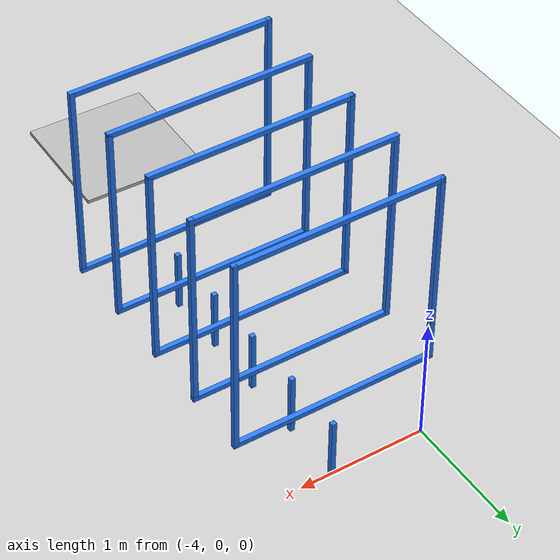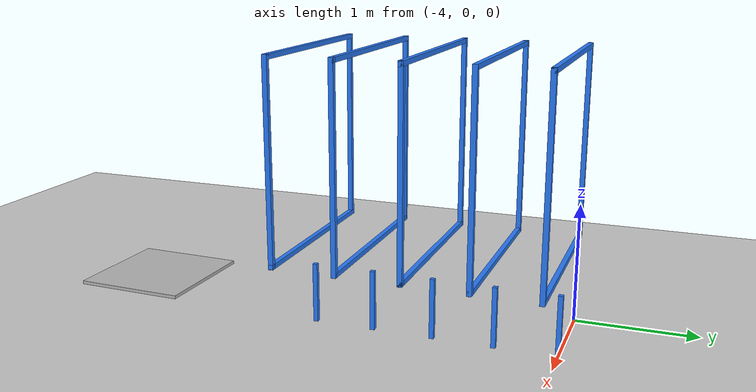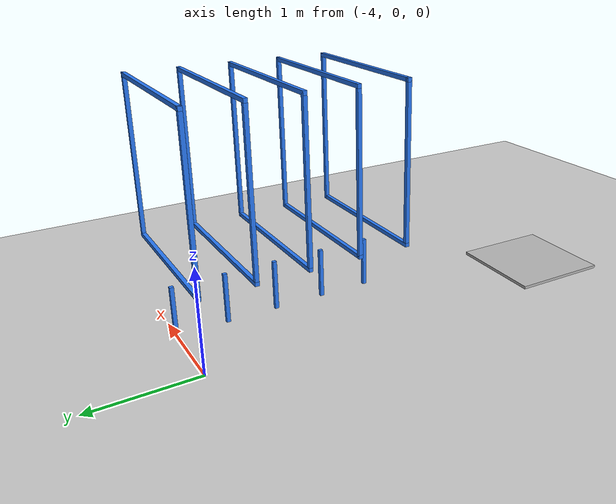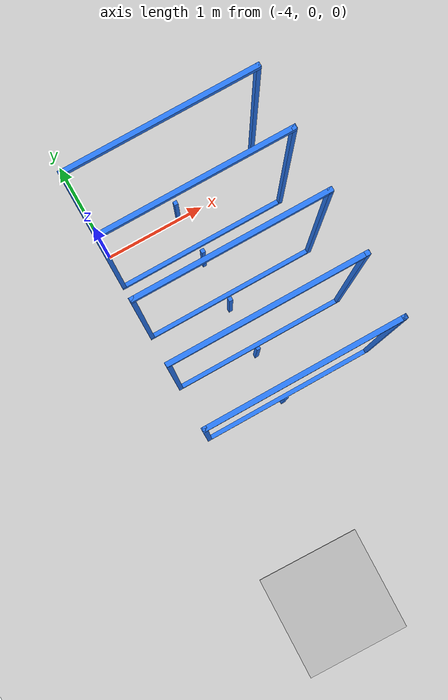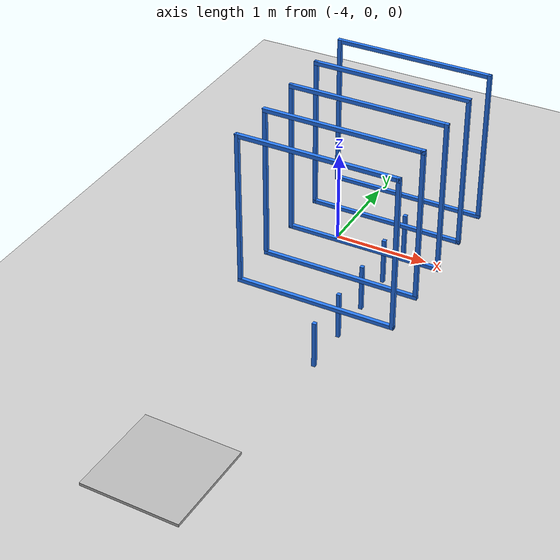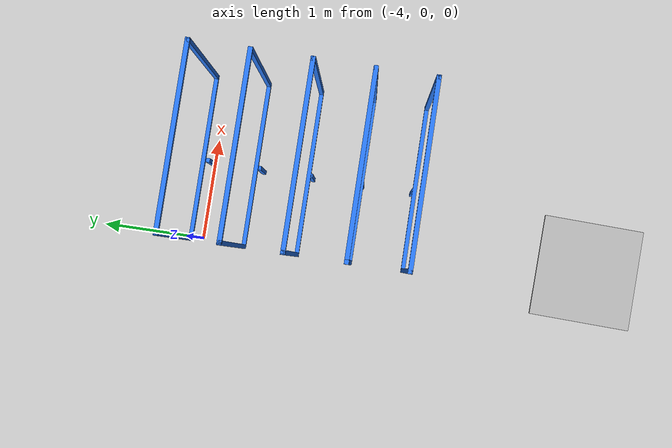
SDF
<sdf version="1.7">
 <world name="default">
  <model name="ground_plane">
   <static>1</static>
   <link name="link">
    <collision name="collision">
     <geometry><plane><normal>0 0 1</normal><size>100 100</size></plane></geometry>
     <surface><friction><ode><mu>100</mu><mu2>50</mu2></ode></friction></surface>
    </collision>
    <visual name="visual">
     <cast_shadows>0</cast_shadows>
     <geometry><plane><normal>0 0 1</normal><size>100 100</size></plane></geometry>
     <material>
      <script><uri>file://media/materials/scripts/gazebo.material</uri><name>Gazebo/Grey</name></script>
     </material>
    </visual>
   </link>
  </model>
  <model name="small_gate">
   <link name="rod">
    <pose>0 0 0.25 0 -0 0</pose>
    <inertial>
     <mass>1</mass>
     <inertia>
      <ixx>0.166667</ixx>
      <ixy>0</ixy>
      <ixz>0</ixz>
      <iyy>0.166667</iyy>
      <iyz>0</iyz>
      <izz>0.166667</izz>
     </inertia>
    </inertial>
    <visual name="visual">
     <geometry><box><size>0.0381 0.0381 0.5</size></box></geometry>
     <material>
      <shader type="vertex"><normal_map>__default__</normal_map></shader>
      <ambient>0.164 0.484 0.978 1</ambient>
      <diffuse>0.164 0.484 0.978 1</diffuse>
      <specular>0.01 0.01 0.01 1</specular>
      <emissive>0 0 0 1</emissive>
     </material>
    </visual>
    <collision name="collision">
     <geometry><box><size>0.0381 0.0381 0.5</size></box></geometry>
     <surface>
      <friction>
       <ode><mu>1</mu><mu2>1</mu2><fdir1>0 0 0</fdir1><slip1>0</slip1><slip2>0</slip2></ode>
       <torsional>
        <coefficient>1</coefficient>
        <patch_radius>0</patch_radius>
        <surface_radius>0</surface_radius>
        <use_patch_radius>1</use_patch_radius>
        <ode><slip>0</slip></ode>
       </torsional>
      </friction>
      <bounce><restitution_coefficient>0</restitution_coefficient><threshold>1e+06</threshold></bounce>
      <contact>
       <collide_without_contact>0</collide_without_contact>
       <collide_without_contact_bitmask>1</collide_without_contact_bitmask>
       <collide_bitmask>1</collide_bitmask>
       <ode>
        <soft_cfm>0</soft_cfm>
        <soft_erp>0.2</soft_erp>
        <kp>1e+13</kp>
        <kd>1</kd>
        <max_vel>0.01</max_vel>
        <min_depth>0</min_depth>
       </ode>
       <bullet>
        <split_impulse>1</split_impulse>
        <split_impulse_penetration_threshold>-0.01</split_impulse_penetration_threshold>
        <soft_cfm>0</soft_cfm>
        <soft_erp>0.2</soft_erp>
        <kp>1e+13</kp>
        <kd>1</kd>
       </bullet>
      </contact>
     </surface>
    </collision>
   </link>
   <link name="top_edge">
    <pose>0 0 2.26905 0 -0 0</pose>
    <inertial>
     <mass>1</mass>
     <inertia>
      <ixx>0.166667</ixx>
      <ixy>0</ixy>
      <ixz>0</ixz>
      <iyy>0.166667</iyy>
      <iyz>0</iyz>
      <izz>0.166667</izz>
     </inertia>
    </inertial>
    <visual name="visual">
     <geometry><box><size>1.5762 0.0381 0.0381</size></box></geometry>
     <material>
      <shader type="vertex"><normal_map>__default__</normal_map></shader>
      <ambient>0.164 0.484 0.978 1</ambient>
      <diffuse>0.164 0.484 0.978 1</diffuse>
      <specular>0.01 0.01 0.01 1</specular>
      <emissive>0 0 0 1</emissive>
     </material>
    </visual>
    <collision name="collision">
     <geometry><box><size>1.5762 0.0381 0.0381</size></box></geometry>
     <surface>
      <friction>
       <ode><mu>1</mu><mu2>1</mu2><fdir1>0 0 0</fdir1><slip1>0</slip1><slip2>0</slip2></ode>
       <torsional>
        <coefficient>1</coefficient>
        <patch_radius>0</patch_radius>
        <surface_radius>0</surface_radius>
        <use_patch_radius>1</use_patch_radius>
        <ode><slip>0</slip></ode>
       </torsional>
      </friction>
      <bounce><restitution_coefficient>0</restitution_coefficient><threshold>1e+06</threshold></bounce>
      <contact>
       <collide_without_contact>0</collide_without_contact>
       <collide_without_contact_bitmask>1</collide_without_contact_bitmask>
       <collide_bitmask>1</collide_bitmask>
       <ode>
        <soft_cfm>0</soft_cfm>
        <soft_erp>0.2</soft_erp>
        <kp>1e+13</kp>
        <kd>1</kd>
        <max_vel>0.01</max_vel>
        <min_depth>0</min_depth>
       </ode>
       <bullet>
        <split_impulse>1</split_impulse>
        <split_impulse_penetration_threshold>-0.01</split_impulse_penetration_threshold>
        <soft_cfm>0</soft_cfm>
        <soft_erp>0.2</soft_erp>
        <kp>1e+13</kp>
        <kd>1</kd>
       </bullet>
      </contact>
     </surface>
    </collision>
   </link>
   <link name="bottom_edge">
    <pose>0 0 0.73095 0 -0 0</pose>
    <inertial>
     <mass>1</mass>
     <inertia>
      <ixx>0.166667</ixx>
      <ixy>0</ixy>
      <ixz>0</ixz>
      <iyy>0.166667</iyy>
      <iyz>0</iyz>
      <izz>0.166667</izz>
     </inertia>
    </inertial>
    <visual name="visual">
     <geometry><box><size>1.5762 0.0381 0.0381</size></box></geometry>
     <material>
      <shader type="vertex"><normal_map>__default__</normal_map></shader>
      <ambient>0.164 0.484 0.978 1</ambient>
      <diffuse>0.164 0.484 0.978 1</diffuse>
      <specular>0.01 0.01 0.01 1</specular>
      <emissive>0 0 0 1</emissive>
     </material>
    </visual>
    <collision name="collision">
     <geometry><box><size>1.5762 0.0381 0.0381</size></box></geometry>
     <surface>
      <friction>
       <ode><mu>1</mu><mu2>1</mu2><fdir1>0 0 0</fdir1><slip1>0</slip1><slip2>0</slip2></ode>
       <torsional>
        <coefficient>1</coefficient>
        <patch_radius>0</patch_radius>
        <surface_radius>0</surface_radius>
        <use_patch_radius>1</use_patch_radius>
        <ode><slip>0</slip></ode>
       </torsional>
      </friction>
      <bounce><restitution_coefficient>0</restitution_coefficient><threshold>1e+06</threshold></bounce>
      <contact>
       <collide_without_contact>0</collide_without_contact>
       <collide_without_contact_bitmask>1</collide_without_contact_bitmask>
       <collide_bitmask>1</collide_bitmask>
       <ode>
        <soft_cfm>0</soft_cfm>
        <soft_erp>0.2</soft_erp>
        <kp>1e+13</kp>
        <kd>1</kd>
        <max_vel>0.01</max_vel>
        <min_depth>0</min_depth>
       </ode>
       <bullet>
        <split_impulse>1</split_impulse>
        <split_impulse_penetration_threshold>-0.01</split_impulse_penetration_threshold>
        <soft_cfm>0</soft_cfm>
        <soft_erp>0.2</soft_erp>
        <kp>1e+13</kp>
        <kd>1</kd>
       </bullet>
      </contact>
     </surface>
    </collision>
   </link>
   <link name="left_edge">
    <pose>-0.76905 0 1.50 0 -0 0</pose>
    <inertial>
     <mass>1</mass>
     <inertia>
      <ixx>0.166667</ixx>
      <ixy>0</ixy>
      <ixz>0</ixz>
      <iyy>0.166667</iyy>
      <iyz>0</iyz>
      <izz>0.166667</izz>
     </inertia>
    </inertial>
    <visual name="visual">
     <geometry><box><size>0.0381 0.0381 1.5762</size></box></geometry>
     <material>
      <shader type="vertex"><normal_map>__default__</normal_map></shader>
      <ambient>0.164 0.484 0.978 1</ambient>
      <diffuse>0.164 0.484 0.978 1</diffuse>
      <specular>0.01 0.01 0.01 1</specular>
      <emissive>0 0 0 1</emissive>
     </material>
    </visual>
    <collision name="collision">
     <geometry><box><size>0.0381 0.0381 1.5762</size></box></geometry>
     <surface>
      <friction>
       <ode><mu>1</mu><mu2>1</mu2><fdir1>0 0 0</fdir1><slip1>0</slip1><slip2>0</slip2></ode>
       <torsional>
        <coefficient>1</coefficient>
        <patch_radius>0</patch_radius>
        <surface_radius>0</surface_radius>
        <use_patch_radius>1</use_patch_radius>
        <ode><slip>0</slip></ode>
       </torsional>
      </friction>
      <bounce><restitution_coefficient>0</restitution_coefficient><threshold>1e+06</threshold></bounce>
      <contact>
       <collide_without_contact>0</collide_without_contact>
       <collide_without_contact_bitmask>1</collide_without_contact_bitmask>
       <collide_bitmask>1</collide_bitmask>
       <ode>
        <soft_cfm>0</soft_cfm>
        <soft_erp>0.2</soft_erp>
        <kp>1e+13</kp>
        <kd>1</kd>
        <max_vel>0.01</max_vel>
        <min_depth>0</min_depth>
       </ode>
       <bullet>
        <split_impulse>1</split_impulse>
        <split_impulse_penetration_threshold>-0.01</split_impulse_penetration_threshold>
        <soft_cfm>0</soft_cfm>
        <soft_erp>0.2</soft_erp>
        <kp>1e+13</kp>
        <kd>1</kd>
       </bullet>
      </contact>
     </surface>
    </collision>
   </link>
   <link name="right_edge">
    <pose>0.76905 0 1.50 0 -0 0</pose>
    <inertial>
     <mass>1</mass>
     <inertia>
      <ixx>0.166667</ixx>
      <ixy>0</ixy>
      <ixz>0</ixz>
      <iyy>0.166667</iyy>
      <iyz>0</iyz>
      <izz>0.166667</izz>
     </inertia>
    </inertial>
    <visual name="visual">
     <geometry><box><size>0.0381 0.0381 1.5762</size></box></geometry>
     <material>
      <shader type="vertex"><normal_map>__default__</normal_map></shader>
      <ambient>0.164 0.484 0.978 1</ambient>
      <diffuse>0.164 0.484 0.978 1</diffuse>
      <specular>0.01 0.01 0.01 1</specular>
      <emissive>0 0 0 1</emissive>
     </material>
    </visual>
    <collision name="collision">
     <geometry><box><size>0.0381 0.0381 1.5762</size></box></geometry>
     <surface>
      <friction>
       <ode><mu>1</mu><mu2>1</mu2><fdir1>0 0 0</fdir1><slip1>0</slip1><slip2>0</slip2></ode>
       <torsional>
        <coefficient>1</coefficient>
        <patch_radius>0</patch_radius>
        <surface_radius>0</surface_radius>
        <use_patch_radius>1</use_patch_radius>
        <ode><slip>0</slip></ode>
       </torsional>
      </friction>
      <bounce><restitution_coefficient>0</restitution_coefficient><threshold>1e+06</threshold></bounce>
      <contact>
       <collide_without_contact>0</collide_without_contact>
       <collide_without_contact_bitmask>1</collide_without_contact_bitmask>
       <collide_bitmask>1</collide_bitmask>
       <ode>
        <soft_cfm>0</soft_cfm>
        <soft_erp>0.2</soft_erp>
        <kp>1e+13</kp>
        <kd>1</kd>
        <max_vel>0.01</max_vel>
        <min_depth>0</min_depth>
       </ode>
       <bullet>
        <split_impulse>1</split_impulse>
        <split_impulse_penetration_threshold>-0.01</split_impulse_penetration_threshold>
        <soft_cfm>0</soft_cfm>
        <soft_erp>0.2</soft_erp>
        <kp>1e+13</kp>
        <kd>1</kd>
       </bullet>
      </contact>
     </surface>
    </collision>
   </link>
   <static>1</static>
   <pose>-3.25 -2 0 0 -0 0</pose>
  </model>
  <model name="small_gate_0">
   <link name="rod">
    <pose>0 0 0.25 0 -0 0</pose>
    <inertial>
     <mass>1</mass>
     <inertia>
      <ixx>0.166667</ixx>
      <ixy>0</ixy>
      <ixz>0</ixz>
      <iyy>0.166667</iyy>
      <iyz>0</iyz>
      <izz>0.166667</izz>
     </inertia>
    </inertial>
    <visual name="visual">
     <geometry><box><size>0.0381 0.0381 0.5</size></box></geometry>
     <material>
      <shader type="vertex"><normal_map>__default__</normal_map></shader>
      <ambient>0.164 0.484 0.978 1</ambient>
      <diffuse>0.164 0.484 0.978 1</diffuse>
      <specular>0.01 0.01 0.01 1</specular>
      <emissive>0 0 0 1</emissive>
     </material>
    </visual>
    <collision name="collision">
     <geometry><box><size>0.0381 0.0381 0.5</size></box></geometry>
     <surface>
      <friction>
       <ode><mu>1</mu><mu2>1</mu2><fdir1>0 0 0</fdir1><slip1>0</slip1><slip2>0</slip2></ode>
       <torsional>
        <coefficient>1</coefficient>
        <patch_radius>0</patch_radius>
        <surface_radius>0</surface_radius>
        <use_patch_radius>1</use_patch_radius>
        <ode><slip>0</slip></ode>
       </torsional>
      </friction>
      <bounce><restitution_coefficient>0</restitution_coefficient><threshold>1e+06</threshold></bounce>
      <contact>
       <collide_without_contact>0</collide_without_contact>
       <collide_without_contact_bitmask>1</collide_without_contact_bitmask>
       <collide_bitmask>1</collide_bitmask>
       <ode>
        <soft_cfm>0</soft_cfm>
        <soft_erp>0.2</soft_erp>
        <kp>1e+13</kp>
        <kd>1</kd>
        <max_vel>0.01</max_vel>
        <min_depth>0</min_depth>
       </ode>
       <bullet>
        <split_impulse>1</split_impulse>
        <split_impulse_penetration_threshold>-0.01</split_impulse_penetration_threshold>
        <soft_cfm>0</soft_cfm>
        <soft_erp>0.2</soft_erp>
        <kp>1e+13</kp>
        <kd>1</kd>
       </bullet>
      </contact>
     </surface>
    </collision>
   </link>
   <link name="top_edge">
    <pose>0 0 2.26905 0 -0 0</pose>
    <inertial>
     <mass>1</mass>
     <inertia>
      <ixx>0.166667</ixx>
      <ixy>0</ixy>
      <ixz>0</ixz>
      <iyy>0.166667</iyy>
      <iyz>0</iyz>
      <izz>0.166667</izz>
     </inertia>
    </inertial>
    <visual name="visual">
     <geometry><box><size>1.5762 0.0381 0.0381</size></box></geometry>
     <material>
      <shader type="vertex"><normal_map>__default__</normal_map></shader>
      <ambient>0.164 0.484 0.978 1</ambient>
      <diffuse>0.164 0.484 0.978 1</diffuse>
      <specular>0.01 0.01 0.01 1</specular>
      <emissive>0 0 0 1</emissive>
     </material>
    </visual>
    <collision name="collision">
     <geometry><box><size>1.5762 0.0381 0.0381</size></box></geometry>
     <surface>
      <friction>
       <ode><mu>1</mu><mu2>1</mu2><fdir1>0 0 0</fdir1><slip1>0</slip1><slip2>0</slip2></ode>
       <torsional>
        <coefficient>1</coefficient>
        <patch_radius>0</patch_radius>
        <surface_radius>0</surface_radius>
        <use_patch_radius>1</use_patch_radius>
        <ode><slip>0</slip></ode>
       </torsional>
      </friction>
      <bounce><restitution_coefficient>0</restitution_coefficient><threshold>1e+06</threshold></bounce>
      <contact>
       <collide_without_contact>0</collide_without_contact>
       <collide_without_contact_bitmask>1</collide_without_contact_bitmask>
       <collide_bitmask>1</collide_bitmask>
       <ode>
        <soft_cfm>0</soft_cfm>
        <soft_erp>0.2</soft_erp>
        <kp>1e+13</kp>
        <kd>1</kd>
        <max_vel>0.01</max_vel>
        <min_depth>0</min_depth>
       </ode>
       <bullet>
        <split_impulse>1</split_impulse>
        <split_impulse_penetration_threshold>-0.01</split_impulse_penetration_threshold>
        <soft_cfm>0</soft_cfm>
        <soft_erp>0.2</soft_erp>
        <kp>1e+13</kp>
        <kd>1</kd>
       </bullet>
      </contact>
     </surface>
    </collision>
   </link>
   <link name="bottom_edge">
    <pose>0 0 0.73095 0 -0 0</pose>
    <inertial>
     <mass>1</mass>
     <inertia>
      <ixx>0.166667</ixx>
      <ixy>0</ixy>
      <ixz>0</ixz>
      <iyy>0.166667</iyy>
      <iyz>0</iyz>
      <izz>0.166667</izz>
     </inertia>
    </inertial>
    <visual name="visual">
     <geometry><box><size>1.5762 0.0381 0.0381</size></box></geometry>
     <material>
      <shader type="vertex"><normal_map>__default__</normal_map></shader>
      <ambient>0.164 0.484 0.978 1</ambient>
      <diffuse>0.164 0.484 0.978 1</diffuse>
      <specular>0.01 0.01 0.01 1</specular>
      <emissive>0 0 0 1</emissive>
     </material>
    </visual>
    <collision name="collision">
     <geometry><box><size>1.5762 0.0381 0.0381</size></box></geometry>
     <surface>
      <friction>
       <ode><mu>1</mu><mu2>1</mu2><fdir1>0 0 0</fdir1><slip1>0</slip1><slip2>0</slip2></ode>
       <torsional>
        <coefficient>1</coefficient>
        <patch_radius>0</patch_radius>
        <surface_radius>0</surface_radius>
        <use_patch_radius>1</use_patch_radius>
        <ode><slip>0</slip></ode>
       </torsional>
      </friction>
      <bounce><restitution_coefficient>0</restitution_coefficient><threshold>1e+06</threshold></bounce>
      <contact>
       <collide_without_contact>0</collide_without_contact>
       <collide_without_contact_bitmask>1</collide_without_contact_bitmask>
       <collide_bitmask>1</collide_bitmask>
       <ode>
        <soft_cfm>0</soft_cfm>
        <soft_erp>0.2</soft_erp>
        <kp>1e+13</kp>
        <kd>1</kd>
        <max_vel>0.01</max_vel>
        <min_depth>0</min_depth>
       </ode>
       <bullet>
        <split_impulse>1</split_impulse>
        <split_impulse_penetration_threshold>-0.01</split_impulse_penetration_threshold>
        <soft_cfm>0</soft_cfm>
        <soft_erp>0.2</soft_erp>
        <kp>1e+13</kp>
        <kd>1</kd>
       </bullet>
      </contact>
     </surface>
    </collision>
   </link>
   <link name="left_edge">
    <pose>-0.76905 0 1.50 0 -0 0</pose>
    <inertial>
     <mass>1</mass>
     <inertia>
      <ixx>0.166667</ixx>
      <ixy>0</ixy>
      <ixz>0</ixz>
      <iyy>0.166667</iyy>
      <iyz>0</iyz>
      <izz>0.166667</izz>
     </inertia>
    </inertial>
    <visual name="visual">
     <geometry><box><size>0.0381 0.0381 1.5762</size></box></geometry>
     <material>
      <shader type="vertex"><normal_map>__default__</normal_map></shader>
      <ambient>0.164 0.484 0.978 1</ambient>
      <diffuse>0.164 0.484 0.978 1</diffuse>
      <specular>0.01 0.01 0.01 1</specular>
      <emissive>0 0 0 1</emissive>
     </material>
    </visual>
    <collision name="collision">
     <geometry><box><size>0.0381 0.0381 1.5762</size></box></geometry>
     <surface>
      <friction>
       <ode><mu>1</mu><mu2>1</mu2><fdir1>0 0 0</fdir1><slip1>0</slip1><slip2>0</slip2></ode>
       <torsional>
        <coefficient>1</coefficient>
        <patch_radius>0</patch_radius>
        <surface_radius>0</surface_radius>
        <use_patch_radius>1</use_patch_radius>
        <ode><slip>0</slip></ode>
       </torsional>
      </friction>
      <bounce><restitution_coefficient>0</restitution_coefficient><threshold>1e+06</threshold></bounce>
      <contact>
       <collide_without_contact>0</collide_without_contact>
       <collide_without_contact_bitmask>1</collide_without_contact_bitmask>
       <collide_bitmask>1</collide_bitmask>
       <ode>
        <soft_cfm>0</soft_cfm>
        <soft_erp>0.2</soft_erp>
        <kp>1e+13</kp>
        <kd>1</kd>
        <max_vel>0.01</max_vel>
        <min_depth>0</min_depth>
       </ode>
       <bullet>
        <split_impulse>1</split_impulse>
        <split_impulse_penetration_threshold>-0.01</split_impulse_penetration_threshold>
        <soft_cfm>0</soft_cfm>
        <soft_erp>0.2</soft_erp>
        <kp>1e+13</kp>
        <kd>1</kd>
       </bullet>
      </contact>
     </surface>
    </collision>
   </link>
   <link name="right_edge">
    <pose>0.76905 0 1.50 0 -0 0</pose>
    <inertial>
     <mass>1</mass>
     <inertia>
      <ixx>0.166667</ixx>
      <ixy>0</ixy>
      <ixz>0</ixz>
      <iyy>0.166667</iyy>
      <iyz>0</iyz>
      <izz>0.166667</izz>
     </inertia>
    </inertial>
    <visual name="visual">
     <geometry><box><size>0.0381 0.0381 1.5762</size></box></geometry>
     <material>
      <shader type="vertex"><normal_map>__default__</normal_map></shader>
      <ambient>0.164 0.484 0.978 1</ambient>
      <diffuse>0.164 0.484 0.978 1</diffuse>
      <specular>0.01 0.01 0.01 1</specular>
      <emissive>0 0 0 1</emissive>
     </material>
    </visual>
    <collision name="collision">
     <geometry><box><size>0.0381 0.0381 1.5762</size></box></geometry>
     <surface>
      <friction>
       <ode><mu>1</mu><mu2>1</mu2><fdir1>0 0 0</fdir1><slip1>0</slip1><slip2>0</slip2></ode>
       <torsional>
        <coefficient>1</coefficient>
        <patch_radius>0</patch_radius>
        <surface_radius>0</surface_radius>
        <use_patch_radius>1</use_patch_radius>
        <ode><slip>0</slip></ode>
       </torsional>
      </friction>
      <bounce><restitution_coefficient>0</restitution_coefficient><threshold>1e+06</threshold></bounce>
      <contact>
       <collide_without_contact>0</collide_without_contact>
       <collide_without_contact_bitmask>1</collide_without_contact_bitmask>
       <collide_bitmask>1</collide_bitmask>
       <ode>
        <soft_cfm>0</soft_cfm>
        <soft_erp>0.2</soft_erp>
        <kp>1e+13</kp>
        <kd>1</kd>
        <max_vel>0.01</max_vel>
        <min_depth>0</min_depth>
       </ode>
       <bullet>
        <split_impulse>1</split_impulse>
        <split_impulse_penetration_threshold>-0.01</split_impulse_penetration_threshold>
        <soft_cfm>0</soft_cfm>
        <soft_erp>0.2</soft_erp>
        <kp>1e+13</kp>
        <kd>1</kd>
       </bullet>
      </contact>
     </surface>
    </collision>
   </link>
   <static>1</static>
   <pose>-3.25 -1.5 0 0 -0 0</pose>
  </model>
  <model name="small_gate_1">
   <link name="rod">
    <pose>0 0 0.25 0 -0 0</pose>
    <inertial>
     <mass>1</mass>
     <inertia>
      <ixx>0.166667</ixx>
      <ixy>0</ixy>
      <ixz>0</ixz>
      <iyy>0.166667</iyy>
      <iyz>0</iyz>
      <izz>0.166667</izz>
     </inertia>
    </inertial>
    <visual name="visual">
     <geometry><box><size>0.0381 0.0381 0.5</size></box></geometry>
     <material>
      <shader type="vertex"><normal_map>__default__</normal_map></shader>
      <ambient>0.164 0.484 0.978 1</ambient>
      <diffuse>0.164 0.484 0.978 1</diffuse>
      <specular>0.01 0.01 0.01 1</specular>
      <emissive>0 0 0 1</emissive>
     </material>
    </visual>
    <collision name="collision">
     <geometry><box><size>0.0381 0.0381 0.5</size></box></geometry>
     <surface>
      <friction>
       <ode><mu>1</mu><mu2>1</mu2><fdir1>0 0 0</fdir1><slip1>0</slip1><slip2>0</slip2></ode>
       <torsional>
        <coefficient>1</coefficient>
        <patch_radius>0</patch_radius>
        <surface_radius>0</surface_radius>
        <use_patch_radius>1</use_patch_radius>
        <ode><slip>0</slip></ode>
       </torsional>
      </friction>
      <bounce><restitution_coefficient>0</restitution_coefficient><threshold>1e+06</threshold></bounce>
      <contact>
       <collide_without_contact>0</collide_without_contact>
       <collide_without_contact_bitmask>1</collide_without_contact_bitmask>
       <collide_bitmask>1</collide_bitmask>
       <ode>
        <soft_cfm>0</soft_cfm>
        <soft_erp>0.2</soft_erp>
        <kp>1e+13</kp>
        <kd>1</kd>
        <max_vel>0.01</max_vel>
        <min_depth>0</min_depth>
       </ode>
       <bullet>
        <split_impulse>1</split_impulse>
        <split_impulse_penetration_threshold>-0.01</split_impulse_penetration_threshold>
        <soft_cfm>0</soft_cfm>
        <soft_erp>0.2</soft_erp>
        <kp>1e+13</kp>
        <kd>1</kd>
       </bullet>
      </contact>
     </surface>
    </collision>
   </link>
   <link name="top_edge">
    <pose>0 0 2.26905 0 -0 0</pose>
    <inertial>
     <mass>1</mass>
     <inertia>
      <ixx>0.166667</ixx>
      <ixy>0</ixy>
      <ixz>0</ixz>
      <iyy>0.166667</iyy>
      <iyz>0</iyz>
      <izz>0.166667</izz>
     </inertia>
    </inertial>
    <visual name="visual">
     <geometry><box><size>1.5762 0.0381 0.0381</size></box></geometry>
     <material>
      <shader type="vertex"><normal_map>__default__</normal_map></shader>
      <ambient>0.164 0.484 0.978 1</ambient>
      <diffuse>0.164 0.484 0.978 1</diffuse>
      <specular>0.01 0.01 0.01 1</specular>
      <emissive>0 0 0 1</emissive>
     </material>
    </visual>
    <collision name="collision">
     <geometry><box><size>1.5762 0.0381 0.0381</size></box></geometry>
     <surface>
      <friction>
       <ode><mu>1</mu><mu2>1</mu2><fdir1>0 0 0</fdir1><slip1>0</slip1><slip2>0</slip2></ode>
       <torsional>
        <coefficient>1</coefficient>
        <patch_radius>0</patch_radius>
        <surface_radius>0</surface_radius>
        <use_patch_radius>1</use_patch_radius>
        <ode><slip>0</slip></ode>
       </torsional>
      </friction>
      <bounce><restitution_coefficient>0</restitution_coefficient><threshold>1e+06</threshold></bounce>
      <contact>
       <collide_without_contact>0</collide_without_contact>
       <collide_without_contact_bitmask>1</collide_without_contact_bitmask>
       <collide_bitmask>1</collide_bitmask>
       <ode>
        <soft_cfm>0</soft_cfm>
        <soft_erp>0.2</soft_erp>
        <kp>1e+13</kp>
        <kd>1</kd>
        <max_vel>0.01</max_vel>
        <min_depth>0</min_depth>
       </ode>
       <bullet>
        <split_impulse>1</split_impulse>
        <split_impulse_penetration_threshold>-0.01</split_impulse_penetration_threshold>
        <soft_cfm>0</soft_cfm>
        <soft_erp>0.2</soft_erp>
        <kp>1e+13</kp>
        <kd>1</kd>
       </bullet>
      </contact>
     </surface>
    </collision>
   </link>
   <link name="bottom_edge">
    <pose>0 0 0.73095 0 -0 0</pose>
    <inertial>
     <mass>1</mass>
     <inertia>
      <ixx>0.166667</ixx>
      <ixy>0</ixy>
      <ixz>0</ixz>
      <iyy>0.166667</iyy>
      <iyz>0</iyz>
      <izz>0.166667</izz>
     </inertia>
    </inertial>
    <visual name="visual">
     <geometry><box><size>1.5762 0.0381 0.0381</size></box></geometry>
     <material>
      <shader type="vertex"><normal_map>__default__</normal_map></shader>
      <ambient>0.164 0.484 0.978 1</ambient>
      <diffuse>0.164 0.484 0.978 1</diffuse>
      <specular>0.01 0.01 0.01 1</specular>
      <emissive>0 0 0 1</emissive>
     </material>
    </visual>
    <collision name="collision">
     <geometry><box><size>1.5762 0.0381 0.0381</size></box></geometry>
     <surface>
      <friction>
       <ode><mu>1</mu><mu2>1</mu2><fdir1>0 0 0</fdir1><slip1>0</slip1><slip2>0</slip2></ode>
       <torsional>
        <coefficient>1</coefficient>
        <patch_radius>0</patch_radius>
        <surface_radius>0</surface_radius>
        <use_patch_radius>1</use_patch_radius>
        <ode><slip>0</slip></ode>
       </torsional>
      </friction>
      <bounce><restitution_coefficient>0</restitution_coefficient><threshold>1e+06</threshold></bounce>
      <contact>
       <collide_without_contact>0</collide_without_contact>
       <collide_without_contact_bitmask>1</collide_without_contact_bitmask>
       <collide_bitmask>1</collide_bitmask>
       <ode>
        <soft_cfm>0</soft_cfm>
        <soft_erp>0.2</soft_erp>
        <kp>1e+13</kp>
        <kd>1</kd>
        <max_vel>0.01</max_vel>
        <min_depth>0</min_depth>
       </ode>
       <bullet>
        <split_impulse>1</split_impulse>
        <split_impulse_penetration_threshold>-0.01</split_impulse_penetration_threshold>
        <soft_cfm>0</soft_cfm>
        <soft_erp>0.2</soft_erp>
        <kp>1e+13</kp>
        <kd>1</kd>
       </bullet>
      </contact>
     </surface>
    </collision>
   </link>
   <link name="left_edge">
    <pose>-0.76905 0 1.50 0 -0 0</pose>
    <inertial>
     <mass>1</mass>
     <inertia>
      <ixx>0.166667</ixx>
      <ixy>0</ixy>
      <ixz>0</ixz>
      <iyy>0.166667</iyy>
      <iyz>0</iyz>
      <izz>0.166667</izz>
     </inertia>
    </inertial>
    <visual name="visual">
     <geometry><box><size>0.0381 0.0381 1.5762</size></box></geometry>
     <material>
      <shader type="vertex"><normal_map>__default__</normal_map></shader>
      <ambient>0.164 0.484 0.978 1</ambient>
      <diffuse>0.164 0.484 0.978 1</diffuse>
      <specular>0.01 0.01 0.01 1</specular>
      <emissive>0 0 0 1</emissive>
     </material>
    </visual>
    <collision name="collision">
     <geometry><box><size>0.0381 0.0381 1.5762</size></box></geometry>
     <surface>
      <friction>
       <ode><mu>1</mu><mu2>1</mu2><fdir1>0 0 0</fdir1><slip1>0</slip1><slip2>0</slip2></ode>
       <torsional>
        <coefficient>1</coefficient>
        <patch_radius>0</patch_radius>
        <surface_radius>0</surface_radius>
        <use_patch_radius>1</use_patch_radius>
        <ode><slip>0</slip></ode>
       </torsional>
      </friction>
      <bounce><restitution_coefficient>0</restitution_coefficient><threshold>1e+06</threshold></bounce>
      <contact>
       <collide_without_contact>0</collide_without_contact>
       <collide_without_contact_bitmask>1</collide_without_contact_bitmask>
       <collide_bitmask>1</collide_bitmask>
       <ode>
        <soft_cfm>0</soft_cfm>
        <soft_erp>0.2</soft_erp>
        <kp>1e+13</kp>
        <kd>1</kd>
        <max_vel>0.01</max_vel>
        <min_depth>0</min_depth>
       </ode>
       <bullet>
        <split_impulse>1</split_impulse>
        <split_impulse_penetration_threshold>-0.01</split_impulse_penetration_threshold>
        <soft_cfm>0</soft_cfm>
        <soft_erp>0.2</soft_erp>
        <kp>1e+13</kp>
        <kd>1</kd>
       </bullet>
      </contact>
     </surface>
    </collision>
   </link>
   <link name="right_edge">
    <pose>0.76905 0 1.50 0 -0 0</pose>
    <inertial>
     <mass>1</mass>
     <inertia>
      <ixx>0.166667</ixx>
      <ixy>0</ixy>
      <ixz>0</ixz>
      <iyy>0.166667</iyy>
      <iyz>0</iyz>
      <izz>0.166667</izz>
     </inertia>
    </inertial>
    <visual name="visual">
     <geometry><box><size>0.0381 0.0381 1.5762</size></box></geometry>
     <material>
      <shader type="vertex"><normal_map>__default__</normal_map></shader>
      <ambient>0.164 0.484 0.978 1</ambient>
      <diffuse>0.164 0.484 0.978 1</diffuse>
      <specular>0.01 0.01 0.01 1</specular>
      <emissive>0 0 0 1</emissive>
     </material>
    </visual>
    <collision name="collision">
     <geometry><box><size>0.0381 0.0381 1.5762</size></box></geometry>
     <surface>
      <friction>
       <ode><mu>1</mu><mu2>1</mu2><fdir1>0 0 0</fdir1><slip1>0</slip1><slip2>0</slip2></ode>
       <torsional>
        <coefficient>1</coefficient>
        <patch_radius>0</patch_radius>
        <surface_radius>0</surface_radius>
        <use_patch_radius>1</use_patch_radius>
        <ode><slip>0</slip></ode>
       </torsional>
      </friction>
      <bounce><restitution_coefficient>0</restitution_coefficient><threshold>1e+06</threshold></bounce>
      <contact>
       <collide_without_contact>0</collide_without_contact>
       <collide_without_contact_bitmask>1</collide_without_contact_bitmask>
       <collide_bitmask>1</collide_bitmask>
       <ode>
        <soft_cfm>0</soft_cfm>
        <soft_erp>0.2</soft_erp>
        <kp>1e+13</kp>
        <kd>1</kd>
        <max_vel>0.01</max_vel>
        <min_depth>0</min_depth>
       </ode>
       <bullet>
        <split_impulse>1</split_impulse>
        <split_impulse_penetration_threshold>-0.01</split_impulse_penetration_threshold>
        <soft_cfm>0</soft_cfm>
        <soft_erp>0.2</soft_erp>
        <kp>1e+13</kp>
        <kd>1</kd>
       </bullet>
      </contact>
     </surface>
    </collision>
   </link>
   <static>1</static>
   <pose>-3.25 -1 0 0 -0 0</pose>
  </model>
  <model name="small_gate_2">
   <link name="rod">
    <pose>0 0 0.25 0 -0 0</pose>
    <inertial>
     <mass>1</mass>
     <inertia>
      <ixx>0.166667</ixx>
      <ixy>0</ixy>
      <ixz>0</ixz>
      <iyy>0.166667</iyy>
      <iyz>0</iyz>
      <izz>0.166667</izz>
     </inertia>
    </inertial>
    <visual name="visual">
     <geometry><box><size>0.0381 0.0381 0.5</size></box></geometry>
     <material>
      <shader type="vertex"><normal_map>__default__</normal_map></shader>
      <ambient>0.164 0.484 0.978 1</ambient>
      <diffuse>0.164 0.484 0.978 1</diffuse>
      <specular>0.01 0.01 0.01 1</specular>
      <emissive>0 0 0 1</emissive>
     </material>
    </visual>
    <collision name="collision">
     <geometry><box><size>0.0381 0.0381 0.5</size></box></geometry>
     <surface>
      <friction>
       <ode><mu>1</mu><mu2>1</mu2><fdir1>0 0 0</fdir1><slip1>0</slip1><slip2>0</slip2></ode>
       <torsional>
        <coefficient>1</coefficient>
        <patch_radius>0</patch_radius>
        <surface_radius>0</surface_radius>
        <use_patch_radius>1</use_patch_radius>
        <ode><slip>0</slip></ode>
       </torsional>
      </friction>
      <bounce><restitution_coefficient>0</restitution_coefficient><threshold>1e+06</threshold></bounce>
      <contact>
       <collide_without_contact>0</collide_without_contact>
       <collide_without_contact_bitmask>1</collide_without_contact_bitmask>
       <collide_bitmask>1</collide_bitmask>
       <ode>
        <soft_cfm>0</soft_cfm>
        <soft_erp>0.2</soft_erp>
        <kp>1e+13</kp>
        <kd>1</kd>
        <max_vel>0.01</max_vel>
        <min_depth>0</min_depth>
       </ode>
       <bullet>
        <split_impulse>1</split_impulse>
        <split_impulse_penetration_threshold>-0.01</split_impulse_penetration_threshold>
        <soft_cfm>0</soft_cfm>
        <soft_erp>0.2</soft_erp>
        <kp>1e+13</kp>
        <kd>1</kd>
       </bullet>
      </contact>
     </surface>
    </collision>
   </link>
   <link name="top_edge">
    <pose>0 0 2.26905 0 -0 0</pose>
    <inertial>
     <mass>1</mass>
     <inertia>
      <ixx>0.166667</ixx>
      <ixy>0</ixy>
      <ixz>0</ixz>
      <iyy>0.166667</iyy>
      <iyz>0</iyz>
      <izz>0.166667</izz>
     </inertia>
    </inertial>
    <visual name="visual">
     <geometry><box><size>1.5762 0.0381 0.0381</size></box></geometry>
     <material>
      <shader type="vertex"><normal_map>__default__</normal_map></shader>
      <ambient>0.164 0.484 0.978 1</ambient>
      <diffuse>0.164 0.484 0.978 1</diffuse>
      <specular>0.01 0.01 0.01 1</specular>
      <emissive>0 0 0 1</emissive>
     </material>
    </visual>
    <collision name="collision">
     <geometry><box><size>1.5762 0.0381 0.0381</size></box></geometry>
     <surface>
      <friction>
       <ode><mu>1</mu><mu2>1</mu2><fdir1>0 0 0</fdir1><slip1>0</slip1><slip2>0</slip2></ode>
       <torsional>
        <coefficient>1</coefficient>
        <patch_radius>0</patch_radius>
        <surface_radius>0</surface_radius>
        <use_patch_radius>1</use_patch_radius>
        <ode><slip>0</slip></ode>
       </torsional>
      </friction>
      <bounce><restitution_coefficient>0</restitution_coefficient><threshold>1e+06</threshold></bounce>
      <contact>
       <collide_without_contact>0</collide_without_contact>
       <collide_without_contact_bitmask>1</collide_without_contact_bitmask>
       <collide_bitmask>1</collide_bitmask>
       <ode>
        <soft_cfm>0</soft_cfm>
        <soft_erp>0.2</soft_erp>
        <kp>1e+13</kp>
        <kd>1</kd>
        <max_vel>0.01</max_vel>
        <min_depth>0</min_depth>
       </ode>
       <bullet>
        <split_impulse>1</split_impulse>
        <split_impulse_penetration_threshold>-0.01</split_impulse_penetration_threshold>
        <soft_cfm>0</soft_cfm>
        <soft_erp>0.2</soft_erp>
        <kp>1e+13</kp>
        <kd>1</kd>
       </bullet>
      </contact>
     </surface>
    </collision>
   </link>
   <link name="bottom_edge">
    <pose>0 0 0.73095 0 -0 0</pose>
    <inertial>
     <mass>1</mass>
     <inertia>
      <ixx>0.166667</ixx>
      <ixy>0</ixy>
      <ixz>0</ixz>
      <iyy>0.166667</iyy>
      <iyz>0</iyz>
      <izz>0.166667</izz>
     </inertia>
    </inertial>
    <visual name="visual">
     <geometry><box><size>1.5762 0.0381 0.0381</size></box></geometry>
     <material>
      <shader type="vertex"><normal_map>__default__</normal_map></shader>
      <ambient>0.164 0.484 0.978 1</ambient>
      <diffuse>0.164 0.484 0.978 1</diffuse>
      <specular>0.01 0.01 0.01 1</specular>
      <emissive>0 0 0 1</emissive>
     </material>
    </visual>
    <collision name="collision">
     <geometry><box><size>1.5762 0.0381 0.0381</size></box></geometry>
     <surface>
      <friction>
       <ode><mu>1</mu><mu2>1</mu2><fdir1>0 0 0</fdir1><slip1>0</slip1><slip2>0</slip2></ode>
       <torsional>
        <coefficient>1</coefficient>
        <patch_radius>0</patch_radius>
        <surface_radius>0</surface_radius>
        <use_patch_radius>1</use_patch_radius>
        <ode><slip>0</slip></ode>
       </torsional>
      </friction>
      <bounce><restitution_coefficient>0</restitution_coefficient><threshold>1e+06</threshold></bounce>
      <contact>
       <collide_without_contact>0</collide_without_contact>
       <collide_without_contact_bitmask>1</collide_without_contact_bitmask>
       <collide_bitmask>1</collide_bitmask>
       <ode>
        <soft_cfm>0</soft_cfm>
        <soft_erp>0.2</soft_erp>
        <kp>1e+13</kp>
        <kd>1</kd>
        <max_vel>0.01</max_vel>
        <min_depth>0</min_depth>
       </ode>
       <bullet>
        <split_impulse>1</split_impulse>
        <split_impulse_penetration_threshold>-0.01</split_impulse_penetration_threshold>
        <soft_cfm>0</soft_cfm>
        <soft_erp>0.2</soft_erp>
        <kp>1e+13</kp>
        <kd>1</kd>
       </bullet>
      </contact>
     </surface>
    </collision>
   </link>
   <link name="left_edge">
    <pose>-0.76905 0 1.50 0 -0 0</pose>
    <inertial>
     <mass>1</mass>
     <inertia>
      <ixx>0.166667</ixx>
      <ixy>0</ixy>
      <ixz>0</ixz>
      <iyy>0.166667</iyy>
      <iyz>0</iyz>
      <izz>0.166667</izz>
     </inertia>
    </inertial>
    <visual name="visual">
     <geometry><box><size>0.0381 0.0381 1.5762</size></box></geometry>
     <material>
      <shader type="vertex"><normal_map>__default__</normal_map></shader>
      <ambient>0.164 0.484 0.978 1</ambient>
      <diffuse>0.164 0.484 0.978 1</diffuse>
      <specular>0.01 0.01 0.01 1</specular>
      <emissive>0 0 0 1</emissive>
     </material>
    </visual>
    <collision name="collision">
     <geometry><box><size>0.0381 0.0381 1.5762</size></box></geometry>
     <surface>
      <friction>
       <ode><mu>1</mu><mu2>1</mu2><fdir1>0 0 0</fdir1><slip1>0</slip1><slip2>0</slip2></ode>
       <torsional>
        <coefficient>1</coefficient>
        <patch_radius>0</patch_radius>
        <surface_radius>0</surface_radius>
        <use_patch_radius>1</use_patch_radius>
        <ode><slip>0</slip></ode>
       </torsional>
      </friction>
      <bounce><restitution_coefficient>0</restitution_coefficient><threshold>1e+06</threshold></bounce>
      <contact>
       <collide_without_contact>0</collide_without_contact>
       <collide_without_contact_bitmask>1</collide_without_contact_bitmask>
       <collide_bitmask>1</collide_bitmask>
       <ode>
        <soft_cfm>0</soft_cfm>
        <soft_erp>0.2</soft_erp>
        <kp>1e+13</kp>
        <kd>1</kd>
        <max_vel>0.01</max_vel>
        <min_depth>0</min_depth>
       </ode>
       <bullet>
        <split_impulse>1</split_impulse>
        <split_impulse_penetration_threshold>-0.01</split_impulse_penetration_threshold>
        <soft_cfm>0</soft_cfm>
        <soft_erp>0.2</soft_erp>
        <kp>1e+13</kp>
        <kd>1</kd>
       </bullet>
      </contact>
     </surface>
    </collision>
   </link>
   <link name="right_edge">
    <pose>0.76905 0 1.50 0 -0 0</pose>
    <inertial>
     <mass>1</mass>
     <inertia>
      <ixx>0.166667</ixx>
      <ixy>0</ixy>
      <ixz>0</ixz>
      <iyy>0.166667</iyy>
      <iyz>0</iyz>
      <izz>0.166667</izz>
     </inertia>
    </inertial>
    <visual name="visual">
     <geometry><box><size>0.0381 0.0381 1.5762</size></box></geometry>
     <material>
      <shader type="vertex"><normal_map>__default__</normal_map></shader>
      <ambient>0.164 0.484 0.978 1</ambient>
      <diffuse>0.164 0.484 0.978 1</diffuse>
      <specular>0.01 0.01 0.01 1</specular>
      <emissive>0 0 0 1</emissive>
     </material>
    </visual>
    <collision name="collision">
     <geometry><box><size>0.0381 0.0381 1.5762</size></box></geometry>
     <surface>
      <friction>
       <ode><mu>1</mu><mu2>1</mu2><fdir1>0 0 0</fdir1><slip1>0</slip1><slip2>0</slip2></ode>
       <torsional>
        <coefficient>1</coefficient>
        <patch_radius>0</patch_radius>
        <surface_radius>0</surface_radius>
        <use_patch_radius>1</use_patch_radius>
        <ode><slip>0</slip></ode>
       </torsional>
      </friction>
      <bounce><restitution_coefficient>0</restitution_coefficient><threshold>1e+06</threshold></bounce>
      <contact>
       <collide_without_contact>0</collide_without_contact>
       <collide_without_contact_bitmask>1</collide_without_contact_bitmask>
       <collide_bitmask>1</collide_bitmask>
       <ode>
        <soft_cfm>0</soft_cfm>
        <soft_erp>0.2</soft_erp>
        <kp>1e+13</kp>
        <kd>1</kd>
        <max_vel>0.01</max_vel>
        <min_depth>0</min_depth>
       </ode>
       <bullet>
        <split_impulse>1</split_impulse>
        <split_impulse_penetration_threshold>-0.01</split_impulse_penetration_threshold>
        <soft_cfm>0</soft_cfm>
        <soft_erp>0.2</soft_erp>
        <kp>1e+13</kp>
        <kd>1</kd>
       </bullet>
      </contact>
     </surface>
    </collision>
   </link>
   <static>1</static>
   <pose>-3.25 -0.5 0 0 -0 0</pose>
  </model>
  <model name="small_gate_3">
   <link name="rod">
    <pose>0 0 0.25 0 -0 0</pose>
    <inertial>
     <mass>1</mass>
     <inertia>
      <ixx>0.166667</ixx>
      <ixy>0</ixy>
      <ixz>0</ixz>
      <iyy>0.166667</iyy>
      <iyz>0</iyz>
      <izz>0.166667</izz>
     </inertia>
    </inertial>
    <visual name="visual">
     <geometry><box><size>0.0381 0.0381 0.5</size></box></geometry>
     <material>
      <shader type="vertex"><normal_map>__default__</normal_map></shader>
      <ambient>0.164 0.484 0.978 1</ambient>
      <diffuse>0.164 0.484 0.978 1</diffuse>
      <specular>0.01 0.01 0.01 1</specular>
      <emissive>0 0 0 1</emissive>
     </material>
    </visual>
    <collision name="collision">
     <geometry><box><size>0.0381 0.0381 0.5</size></box></geometry>
     <surface>
      <friction>
       <ode><mu>1</mu><mu2>1</mu2><fdir1>0 0 0</fdir1><slip1>0</slip1><slip2>0</slip2></ode>
       <torsional>
        <coefficient>1</coefficient>
        <patch_radius>0</patch_radius>
        <surface_radius>0</surface_radius>
        <use_patch_radius>1</use_patch_radius>
        <ode><slip>0</slip></ode>
       </torsional>
      </friction>
      <bounce><restitution_coefficient>0</restitution_coefficient><threshold>1e+06</threshold></bounce>
      <contact>
       <collide_without_contact>0</collide_without_contact>
       <collide_without_contact_bitmask>1</collide_without_contact_bitmask>
       <collide_bitmask>1</collide_bitmask>
       <ode>
        <soft_cfm>0</soft_cfm>
        <soft_erp>0.2</soft_erp>
        <kp>1e+13</kp>
        <kd>1</kd>
        <max_vel>0.01</max_vel>
        <min_depth>0</min_depth>
       </ode>
       <bullet>
        <split_impulse>1</split_impulse>
        <split_impulse_penetration_threshold>-0.01</split_impulse_penetration_threshold>
        <soft_cfm>0</soft_cfm>
        <soft_erp>0.2</soft_erp>
        <kp>1e+13</kp>
        <kd>1</kd>
       </bullet>
      </contact>
     </surface>
    </collision>
   </link>
   <link name="top_edge">
    <pose>0 0 2.26905 0 -0 0</pose>
    <inertial>
     <mass>1</mass>
     <inertia>
      <ixx>0.166667</ixx>
      <ixy>0</ixy>
      <ixz>0</ixz>
      <iyy>0.166667</iyy>
      <iyz>0</iyz>
      <izz>0.166667</izz>
     </inertia>
    </inertial>
    <visual name="visual">
     <geometry><box><size>1.5762 0.0381 0.0381</size></box></geometry>
     <material>
      <shader type="vertex"><normal_map>__default__</normal_map></shader>
      <ambient>0.164 0.484 0.978 1</ambient>
      <diffuse>0.164 0.484 0.978 1</diffuse>
      <specular>0.01 0.01 0.01 1</specular>
      <emissive>0 0 0 1</emissive>
     </material>
    </visual>
    <collision name="collision">
     <geometry><box><size>1.5762 0.0381 0.0381</size></box></geometry>
     <surface>
      <friction>
       <ode><mu>1</mu><mu2>1</mu2><fdir1>0 0 0</fdir1><slip1>0</slip1><slip2>0</slip2></ode>
       <torsional>
        <coefficient>1</coefficient>
        <patch_radius>0</patch_radius>
        <surface_radius>0</surface_radius>
        <use_patch_radius>1</use_patch_radius>
        <ode><slip>0</slip></ode>
       </torsional>
      </friction>
      <bounce><restitution_coefficient>0</restitution_coefficient><threshold>1e+06</threshold></bounce>
      <contact>
       <collide_without_contact>0</collide_without_contact>
       <collide_without_contact_bitmask>1</collide_without_contact_bitmask>
       <collide_bitmask>1</collide_bitmask>
       <ode>
        <soft_cfm>0</soft_cfm>
        <soft_erp>0.2</soft_erp>
        <kp>1e+13</kp>
        <kd>1</kd>
        <max_vel>0.01</max_vel>
        <min_depth>0</min_depth>
       </ode>
       <bullet>
        <split_impulse>1</split_impulse>
        <split_impulse_penetration_threshold>-0.01</split_impulse_penetration_threshold>
        <soft_cfm>0</soft_cfm>
        <soft_erp>0.2</soft_erp>
        <kp>1e+13</kp>
        <kd>1</kd>
       </bullet>
      </contact>
     </surface>
    </collision>
   </link>
   <link name="bottom_edge">
    <pose>0 0 0.73095 0 -0 0</pose>
    <inertial>
     <mass>1</mass>
     <inertia>
      <ixx>0.166667</ixx>
      <ixy>0</ixy>
      <ixz>0</ixz>
      <iyy>0.166667</iyy>
      <iyz>0</iyz>
      <izz>0.166667</izz>
     </inertia>
    </inertial>
    <visual name="visual">
     <geometry><box><size>1.5762 0.0381 0.0381</size></box></geometry>
     <material>
      <shader type="vertex"><normal_map>__default__</normal_map></shader>
      <ambient>0.164 0.484 0.978 1</ambient>
      <diffuse>0.164 0.484 0.978 1</diffuse>
      <specular>0.01 0.01 0.01 1</specular>
      <emissive>0 0 0 1</emissive>
     </material>
    </visual>
    <collision name="collision">
     <geometry><box><size>1.5762 0.0381 0.0381</size></box></geometry>
     <surface>
      <friction>
       <ode><mu>1</mu><mu2>1</mu2><fdir1>0 0 0</fdir1><slip1>0</slip1><slip2>0</slip2></ode>
       <torsional>
        <coefficient>1</coefficient>
        <patch_radius>0</patch_radius>
        <surface_radius>0</surface_radius>
        <use_patch_radius>1</use_patch_radius>
        <ode><slip>0</slip></ode>
       </torsional>
      </friction>
      <bounce><restitution_coefficient>0</restitution_coefficient><threshold>1e+06</threshold></bounce>
      <contact>
       <collide_without_contact>0</collide_without_contact>
       <collide_without_contact_bitmask>1</collide_without_contact_bitmask>
       <collide_bitmask>1</collide_bitmask>
       <ode>
        <soft_cfm>0</soft_cfm>
        <soft_erp>0.2</soft_erp>
        <kp>1e+13</kp>
        <kd>1</kd>
        <max_vel>0.01</max_vel>
        <min_depth>0</min_depth>
       </ode>
       <bullet>
        <split_impulse>1</split_impulse>
        <split_impulse_penetration_threshold>-0.01</split_impulse_penetration_threshold>
        <soft_cfm>0</soft_cfm>
        <soft_erp>0.2</soft_erp>
        <kp>1e+13</kp>
        <kd>1</kd>
       </bullet>
      </contact>
     </surface>
    </collision>
   </link>
   <link name="left_edge">
    <pose>-0.76905 0 1.50 0 -0 0</pose>
    <inertial>
     <mass>1</mass>
     <inertia>
      <ixx>0.166667</ixx>
      <ixy>0</ixy>
      <ixz>0</ixz>
      <iyy>0.166667</iyy>
      <iyz>0</iyz>
      <izz>0.166667</izz>
     </inertia>
    </inertial>
    <visual name="visual">
     <geometry><box><size>0.0381 0.0381 1.5762</size></box></geometry>
     <material>
      <shader type="vertex"><normal_map>__default__</normal_map></shader>
      <ambient>0.164 0.484 0.978 1</ambient>
      <diffuse>0.164 0.484 0.978 1</diffuse>
      <specular>0.01 0.01 0.01 1</specular>
      <emissive>0 0 0 1</emissive>
     </material>
    </visual>
    <collision name="collision">
     <geometry><box><size>0.0381 0.0381 1.5762</size></box></geometry>
     <surface>
      <friction>
       <ode><mu>1</mu><mu2>1</mu2><fdir1>0 0 0</fdir1><slip1>0</slip1><slip2>0</slip2></ode>
       <torsional>
        <coefficient>1</coefficient>
        <patch_radius>0</patch_radius>
        <surface_radius>0</surface_radius>
        <use_patch_radius>1</use_patch_radius>
        <ode><slip>0</slip></ode>
       </torsional>
      </friction>
      <bounce><restitution_coefficient>0</restitution_coefficient><threshold>1e+06</threshold></bounce>
      <contact>
       <collide_without_contact>0</collide_without_contact>
       <collide_without_contact_bitmask>1</collide_without_contact_bitmask>
       <collide_bitmask>1</collide_bitmask>
       <ode>
        <soft_cfm>0</soft_cfm>
        <soft_erp>0.2</soft_erp>
        <kp>1e+13</kp>
        <kd>1</kd>
        <max_vel>0.01</max_vel>
        <min_depth>0</min_depth>
       </ode>
       <bullet>
        <split_impulse>1</split_impulse>
        <split_impulse_penetration_threshold>-0.01</split_impulse_penetration_threshold>
        <soft_cfm>0</soft_cfm>
        <soft_erp>0.2</soft_erp>
        <kp>1e+13</kp>
        <kd>1</kd>
       </bullet>
      </contact>
     </surface>
    </collision>
   </link>
   <link name="right_edge">
    <pose>0.76905 0 1.50 0 -0 0</pose>
    <inertial>
     <mass>1</mass>
     <inertia>
      <ixx>0.166667</ixx>
      <ixy>0</ixy>
      <ixz>0</ixz>
      <iyy>0.166667</iyy>
      <iyz>0</iyz>
      <izz>0.166667</izz>
     </inertia>
    </inertial>
    <visual name="visual">
     <geometry><box><size>0.0381 0.0381 1.5762</size></box></geometry>
     <material>
      <shader type="vertex"><normal_map>__default__</normal_map></shader>
      <ambient>0.164 0.484 0.978 1</ambient>
      <diffuse>0.164 0.484 0.978 1</diffuse>
      <specular>0.01 0.01 0.01 1</specular>
      <emissive>0 0 0 1</emissive>
     </material>
    </visual>
    <collision name="collision">
     <geometry><box><size>0.0381 0.0381 1.5762</size></box></geometry>
     <surface>
      <friction>
       <ode><mu>1</mu><mu2>1</mu2><fdir1>0 0 0</fdir1><slip1>0</slip1><slip2>0</slip2></ode>
       <torsional>
        <coefficient>1</coefficient>
        <patch_radius>0</patch_radius>
        <surface_radius>0</surface_radius>
        <use_patch_radius>1</use_patch_radius>
        <ode><slip>0</slip></ode>
       </torsional>
      </friction>
      <bounce><restitution_coefficient>0</restitution_coefficient><threshold>1e+06</threshold></bounce>
      <contact>
       <collide_without_contact>0</collide_without_contact>
       <collide_without_contact_bitmask>1</collide_without_contact_bitmask>
       <collide_bitmask>1</collide_bitmask>
       <ode>
        <soft_cfm>0</soft_cfm>
        <soft_erp>0.2</soft_erp>
        <kp>1e+13</kp>
        <kd>1</kd>
        <max_vel>0.01</max_vel>
        <min_depth>0</min_depth>
       </ode>
       <bullet>
        <split_impulse>1</split_impulse>
        <split_impulse_penetration_threshold>-0.01</split_impulse_penetration_threshold>
        <soft_cfm>0</soft_cfm>
        <soft_erp>0.2</soft_erp>
        <kp>1e+13</kp>
        <kd>1</kd>
       </bullet>
      </contact>
     </surface>
    </collision>
   </link>
   <static>1</static>
   <pose>-3.25 0 0 0 -0 0</pose>
  </model>
  <model name="landing-sign">
   <static>1</static>
   <pose>-3.76485 -3.85458 0 0 0 -1.59803</pose>
   <link name="link">
    <collision name="collision"><geometry><box><size>1 1 0.05</size></box></geometry></collision>
    <visual name="visual">
     <geometry><box><size>1 1 0.05</size></box></geometry>
     <material>
      <script>
       <uri>model://landing-sign/materials/scripts/landing.material</uri>
       <name>Gazebo/LandingPlatform</name>
      </script>
     </material>
    </visual>
   </link>
  </model>
  <model name="asphalt_plane">
   <static>1</static>
   <link name="link">
    <collision name="collision"><geometry><box><size>200 200 0.1</size></box></geometry></collision>
    <visual name="visual">
     <cast_shadows>0</cast_shadows>
     <transparency>1</transparency>
     <geometry><box><size>200 200 0.1</size></box></geometry>
     <material>
      <script>
       <uri>model://asphalt_plane/materials/scripts</uri>
       <uri>model://asphalt_plane/materials/textures</uri>
       <name>vrc/asphalt</name>
      </script>
     </material>
    </visual>
   </link>
   <pose>3.87759 -1.81498 3.8 0 -0 0</pose>
  </model>
  <model name="asphalt_plane">
   <static>1</static>
   <link name="link">
    <collision name="collision"><geometry><box><size>200 200 0.1</size></box></geometry></collision>
    <visual name="visual">
     <cast_shadows>0</cast_shadows>
     <transparency>1</transparency>
     <geometry><box><size>200 200 0.1</size></box></geometry>
     <material>
      <script>
       <uri>model://asphalt_plane/materials/scripts</uri>
       <uri>model://asphalt_plane/materials/textures</uri>
       <name>vrc/asphalt</name>
      </script>
     </material>
    </visual>
   </link>
   <pose>3.87759 -1.81498 3.8 0 -0 0</pose>
  </model>
 </world>
</sdf>
